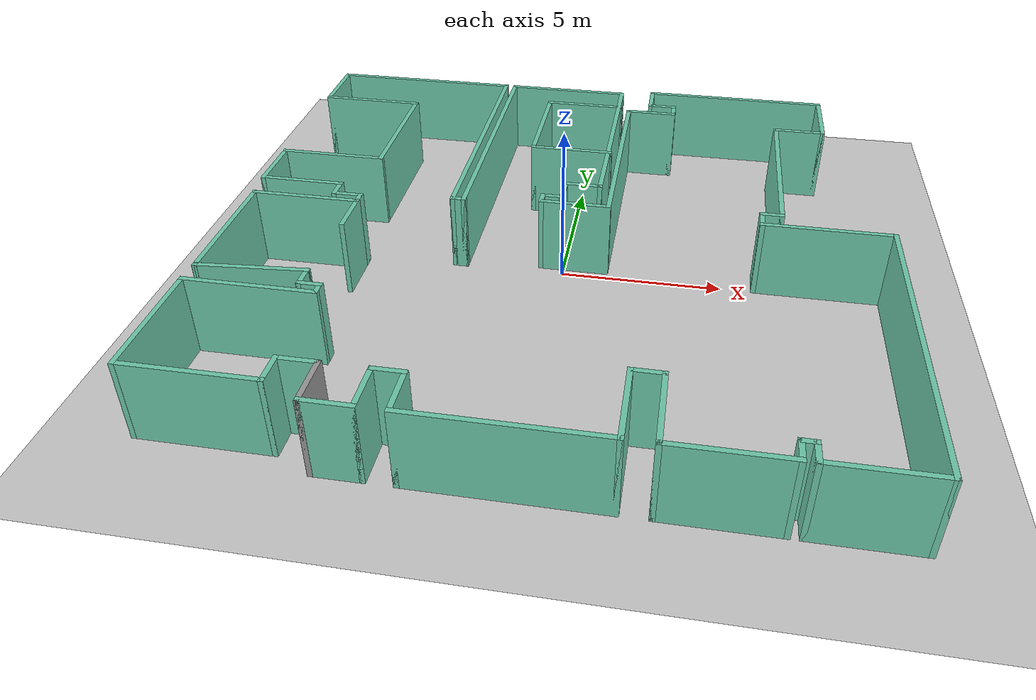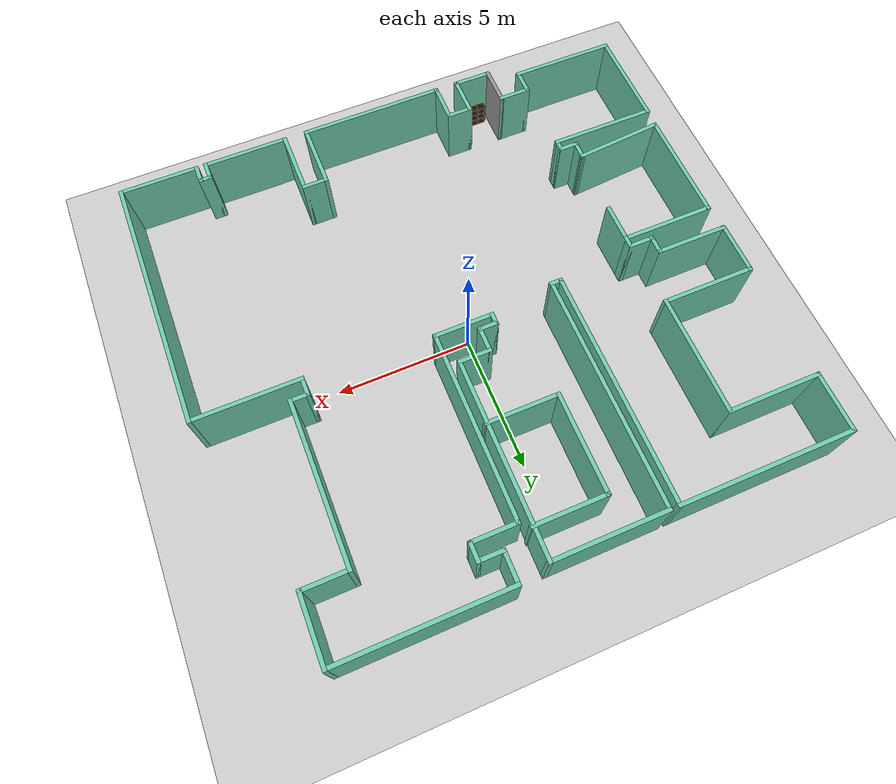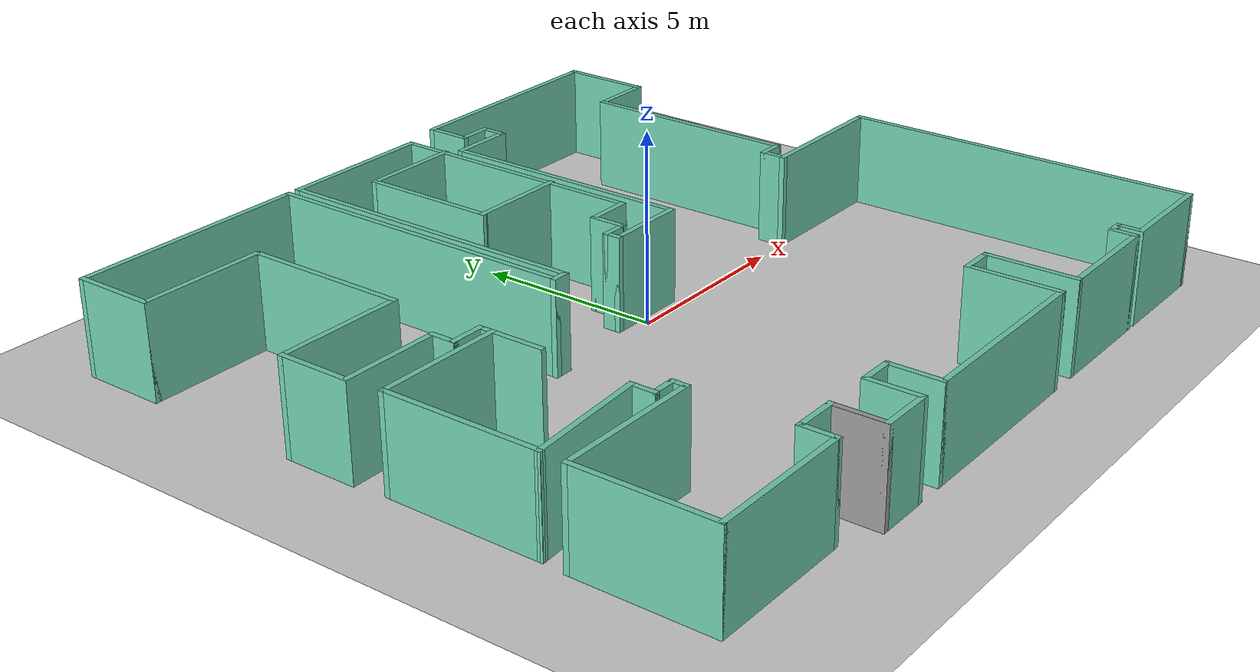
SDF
<sdf version="1.6">
 <world name="default">
  <model name="ground_plane">
   <static>1</static>
   <link name="link">
    <collision name="collision">
     <geometry><plane><normal>0 0 1</normal><size>100 100</size></plane></geometry>
     <surface>
      <contact><collide_bitmask>65535</collide_bitmask></contact>
      <friction><ode><mu>100</mu><mu2>50</mu2></ode></friction>
     </surface>
    </collision>
    <visual name="visual">
     <cast_shadows>0</cast_shadows>
     <geometry><plane><normal>0 0 1</normal><size>100 100</size></plane></geometry>
     <material>
      <script><uri>file://media/materials/scripts/gazebo.material</uri><name>Gazebo/Grey</name></script>
     </material>
    </visual>
   </link>
  </model>
  <model name="map_116">
   <pose>0.003051 -0.346569 0 0 -0 0</pose>
   <link name="Wall_102">
    <collision name="Wall_102_Collision">
     <geometry><box><size>3.5 0.15 2.5</size></box></geometry>
     <pose>0 0 1.25 0 -0 0</pose>
    </collision>
    <visual name="Wall_102_Visual">
     <pose>0 0 1.25 0 -0 0</pose>
     <geometry><box><size>3.5 0.15 2.5</size></box></geometry>
     <material>
      <script><uri>file://media/materials/scripts/gazebo.material</uri><name>Gazebo/Grey</name></script>
      <ambient>0.435294 0.796078 0.67451 1</ambient>
     </material>
     <meta><layer>0</layer></meta>
    </visual>
    <pose>-8.075 -0.3 0 0 -0 3.14159</pose>
   </link>
   <link name="Wall_104">
    <collision name="Wall_104_Collision">
     <geometry><box><size>4.25 0.15 2.5</size></box></geometry>
     <pose>0 0 1.25 0 -0 0</pose>
    </collision>
    <visual name="Wall_104_Visual">
     <pose>0 0 1.25 0 -0 0</pose>
     <geometry><box><size>4.25 0.15 2.5</size></box></geometry>
     <material>
      <script><uri>file://media/materials/scripts/gazebo.material</uri><name>Gazebo/Grey</name></script>
      <ambient>0.435294 0.796078 0.67451 1</ambient>
     </material>
     <meta><layer>0</layer></meta>
    </visual>
    <pose>-9.75 -2.35 0 0 -0 -1.5708</pose>
   </link>
   <link name="Wall_105">
    <collision name="Wall_105_Collision">
     <geometry><box><size>3.35975 0.15 2.5</size></box></geometry>
     <pose>0 0 1.25 0 -0 0</pose>
    </collision>
    <visual name="Wall_105_Visual">
     <pose>0 0 1.25 0 -0 0</pose>
     <geometry><box><size>3.35975 0.15 2.5</size></box></geometry>
     <material>
      <script><uri>file://media/materials/scripts/gazebo.material</uri><name>Gazebo/Grey</name></script>
      <ambient>0.435294 0.796078 0.67451 1</ambient>
     </material>
     <meta><layer>0</layer></meta>
    </visual>
    <pose>-8.15 -4.275 0 0 -0 0.077967</pose>
   </link>
   <link name="Wall_107">
    <collision name="Wall_107_Collision">
     <geometry><box><size>1.5 0.15 2.5</size></box></geometry>
     <pose>0 0 1.25 0 -0 0</pose>
    </collision>
    <visual name="Wall_107_Visual">
     <pose>0 0 1.25 0 -0 0</pose>
     <geometry><box><size>1.5 0.15 2.5</size></box></geometry>
     <material>
      <script><uri>file://media/materials/scripts/gazebo.material</uri><name>Gazebo/Grey</name></script>
      <ambient>0.435294 0.796078 0.67451 1</ambient>
     </material>
     <meta><layer>0</layer></meta>
    </visual>
    <pose>-6.4 -0.975 0 0 -0 -1.5708</pose>
   </link>
   <link name="Wall_109">
    <collision name="Wall_109_Collision">
     <geometry><box><size>2.75 0.15 2.5</size></box></geometry>
     <pose>0 0 1.25 0 -0 0</pose>
    </collision>
    <visual name="Wall_109_Visual">
     <pose>0 0 1.25 0 -0 0</pose>
     <geometry><box><size>2.75 0.15 2.5</size></box></geometry>
     <material>
      <script><uri>file://media/materials/scripts/gazebo.material</uri><name>Gazebo/Grey</name></script>
      <ambient>0.435294 0.796078 0.67451 1</ambient>
     </material>
     <meta><layer>0</layer></meta>
    </visual>
    <pose>-0.30531 7.77428 0 0 -0 3.14159</pose>
   </link>
   <link name="Wall_110">
    <collision name="Wall_110_Collision">
     <geometry><box><size>3.75 0.15 2.5</size></box></geometry>
     <pose>0 0 1.25 0 -0 0</pose>
    </collision>
    <visual name="Wall_110_Visual">
     <pose>0 0 1.25 0 -0 0</pose>
     <geometry><box><size>3.75 0.15 2.5</size></box></geometry>
     <material>
      <script><uri>file://media/materials/scripts/gazebo.material</uri><name>Gazebo/Grey</name></script>
      <ambient>0.435294 0.796078 0.67451 1</ambient>
     </material>
     <meta><layer>0</layer></meta>
    </visual>
    <pose>-1.60531 5.97428 0 0 -0 -1.5708</pose>
   </link>
   <link name="Wall_113">
    <collision name="Wall_113_Collision">
     <geometry><box><size>2.75 0.15 2.5</size></box></geometry>
     <pose>0 0 1.25 0 -0 0</pose>
    </collision>
    <visual name="Wall_113_Visual">
     <pose>0 0 1.25 0 -0 0</pose>
     <geometry><box><size>2.75 0.15 2.5</size></box></geometry>
     <material>
      <script><uri>file://media/materials/scripts/gazebo.material</uri><name>Gazebo/Grey</name></script>
      <ambient>0.435294 0.796078 0.67451 1</ambient>
     </material>
     <meta><layer>0</layer></meta>
    </visual>
    <pose>-0.30531 4.17428 0 0 -0 0</pose>
   </link>
   <link name="Wall_25">
    <collision name="Wall_25_Collision">
     <geometry><box><size>0.75 0.15 2.5</size></box></geometry>
     <pose>0 0 1.25 0 -0 0</pose>
    </collision>
    <visual name="Wall_25_Visual">
     <pose>0 0 1.25 0 -0 0</pose>
     <geometry><box><size>0.75 0.15 2.5</size></box></geometry>
     <material>
      <script><uri>file://media/materials/scripts/gazebo.material</uri><name>Gazebo/Grey</name></script>
      <ambient>0.435294 0.796078 0.67451 1</ambient>
     </material>
     <meta><layer>0</layer></meta>
    </visual>
    <pose>-6.55 -4.45 0 0 -0 -1.5708</pose>
   </link>
   <link name="Wall_26">
    <collision name="Wall_26_Collision">
     <geometry><box><size>0.75 0.15 2.5</size></box></geometry>
     <pose>0 0 1.25 0 -0 0</pose>
    </collision>
    <visual name="Wall_26_Visual">
     <pose>0 0 1.25 0 -0 0</pose>
     <geometry><box><size>0.75 0.15 2.5</size></box></geometry>
     <material>
      <script><uri>file://media/materials/scripts/gazebo.material</uri><name>Gazebo/Grey</name></script>
      <ambient>0.435294 0.796078 0.67451 1</ambient>
     </material>
     <meta><layer>0</layer></meta>
    </visual>
    <pose>-6.25 -4.75 0 0 -0 0</pose>
   </link>
   <link name="Wall_27">
    <collision name="Wall_27_Collision">
     <geometry><box><size>0.5 0.15 2.5</size></box></geometry>
     <pose>0 0 1.25 0 -0 0</pose>
    </collision>
    <visual name="Wall_27_Visual">
     <pose>0 0 1.25 0 -0 0</pose>
     <geometry><box><size>0.5 0.15 2.5</size></box></geometry>
     <material>
      <script><uri>file://media/materials/scripts/gazebo.material</uri><name>Gazebo/Grey</name></script>
      <ambient>0.435294 0.796078 0.67451 1</ambient>
     </material>
     <meta><layer>0</layer></meta>
    </visual>
    <pose>-5.95 -4.925 0 0 -0 -1.5708</pose>
   </link>
   <link name="Wall_28">
    <collision name="Wall_28_Collision">
     <geometry><box><size>4 0.15 2.5</size></box></geometry>
     <pose>0 0 1.25 0 -0 0</pose>
    </collision>
    <visual name="Wall_28_Visual">
     <pose>0 0 1.25 0 -0 0</pose>
     <geometry><box><size>4 0.15 2.5</size></box></geometry>
     <material>
      <script><uri>file://media/materials/scripts/gazebo.material</uri><name>Gazebo/Grey</name></script>
      <ambient>0.435294 0.796078 0.67451 1</ambient>
     </material>
     <meta><layer>0</layer></meta>
    </visual>
    <pose>-7.875 -5.1 0 0 -0 3.14159</pose>
   </link>
   <link name="Wall_29">
    <collision name="Wall_29_Collision">
     <geometry><box><size>3.75 0.15 2.5</size></box></geometry>
     <pose>0 0 1.25 0 -0 0</pose>
    </collision>
    <visual name="Wall_29_Visual">
     <pose>0 0 1.25 0 -0 0</pose>
     <geometry><box><size>3.75 0.15 2.5</size></box></geometry>
     <material>
      <script><uri>file://media/materials/scripts/gazebo.material</uri><name>Gazebo/Grey</name></script>
      <ambient>0.435294 0.796078 0.67451 1</ambient>
     </material>
     <meta><layer>0</layer></meta>
    </visual>
    <pose>-9.8 -6.9 0 0 -0 -1.5708</pose>
   </link>
   <link name="Wall_30">
    <collision name="Wall_30_Collision">
     <geometry><box><size>4 0.15 2.5</size></box></geometry>
     <pose>0 0 1.25 0 -0 0</pose>
    </collision>
    <visual name="Wall_30_Visual">
     <pose>0 0 1.25 0 -0 0</pose>
     <geometry><box><size>4 0.15 2.5</size></box></geometry>
     <material>
      <script><uri>file://media/materials/scripts/gazebo.material</uri><name>Gazebo/Grey</name></script>
      <ambient>0.435294 0.796078 0.67451 1</ambient>
     </material>
     <meta><layer>0</layer></meta>
    </visual>
    <pose>-7.875 -8.7 0 0 -0 0</pose>
   </link>
   <link name="Wall_31">
    <collision name="Wall_31_Collision">
     <geometry><box><size>1 0.15 2.5</size></box></geometry>
     <pose>0 0 1.25 0 -0 0</pose>
    </collision>
    <visual name="Wall_31_Visual">
     <pose>0 0 1.25 0 -0 0</pose>
     <geometry><box><size>1 0.15 2.5</size></box></geometry>
     <material>
      <script><uri>file://media/materials/scripts/gazebo.material</uri><name>Gazebo/Grey</name></script>
      <ambient>0.435294 0.796078 0.67451 1</ambient>
     </material>
     <meta><layer>0</layer></meta>
    </visual>
    <pose>-5.95 -8.275 0 0 -0 1.5708</pose>
   </link>
   <link name="Wall_32">
    <collision name="Wall_32_Collision">
     <geometry><box><size>1.25 0.15 2.5</size></box></geometry>
     <pose>0 0 1.25 0 -0 0</pose>
    </collision>
    <visual name="Wall_32_Visual">
     <pose>0 0 1.25 0 -0 0</pose>
     <geometry><box><size>1.25 0.15 2.5</size></box></geometry>
     <material>
      <script><uri>file://media/materials/scripts/gazebo.material</uri><name>Gazebo/Grey</name></script>
      <ambient>0.435294 0.796078 0.67451 1</ambient>
     </material>
     <meta><layer>0</layer></meta>
    </visual>
    <pose>-5.4 -7.85 0 0 -0 0</pose>
   </link>
   <link name="Wall_33">
    <collision name="Wall_33_Collision">
     <geometry><box><size>1.5 0.15 2.5</size></box></geometry>
     <pose>0 0 1.25 0 -0 0</pose>
    </collision>
    <visual name="Wall_33_Visual">
     <pose>0 0 1.25 0 -0 0</pose>
     <geometry><box><size>1.5 0.15 2.5</size></box></geometry>
     <material>
      <script><uri>file://media/materials/scripts/gazebo.material</uri><name>Gazebo/Grey</name></script>
      <ambient>1 1 1 1</ambient>
     </material>
     <meta><layer>0</layer></meta>
    </visual>
    <pose>-4.85 -8.525 0 0 -0 -1.5708</pose>
   </link>
   <link name="Wall_34">
    <collision name="Wall_34_Collision">
     <geometry><box><size>1.5 0.15 2.5</size></box></geometry>
     <pose>0 0 1.25 0 -0 0</pose>
    </collision>
    <visual name="Wall_34_Visual">
     <pose>0 0 1.25 0 -0 0</pose>
     <geometry><box><size>1.5 0.15 2.5</size></box></geometry>
     <material>
      <script><uri>file://media/materials/scripts/gazebo.material</uri><name>Gazebo/Grey</name></script>
      <ambient>0.435294 0.796078 0.67451 1</ambient>
     </material>
     <meta><layer>0</layer></meta>
    </visual>
    <pose>-4.175 -9.2 0 0 -0 0</pose>
   </link>
   <link name="Wall_35">
    <collision name="Wall_35_Collision">
     <geometry><box><size>1.5 0.15 2.5</size></box></geometry>
     <pose>0 0 1.25 0 -0 0</pose>
    </collision>
    <visual name="Wall_35_Visual">
     <pose>0 0 1.25 0 -0 0</pose>
     <geometry><box><size>1.5 0.15 2.5</size></box></geometry>
     <material>
      <script><uri>file://media/materials/scripts/gazebo.material</uri><name>Gazebo/Grey</name></script>
      <ambient>0.435294 0.796078 0.67451 1</ambient>
     </material>
     <meta><layer>0</layer></meta>
    </visual>
    <pose>-3.5 -8.525 0 0 -0 1.5708</pose>
   </link>
   <link name="Wall_36">
    <collision name="Wall_36_Collision">
     <geometry><box><size>1 0.15 2.5</size></box></geometry>
     <pose>0 0 1.25 0 -0 0</pose>
    </collision>
    <visual name="Wall_36_Visual">
     <pose>0 0 1.25 0 -0 0</pose>
     <geometry><box><size>1 0.15 2.5</size></box></geometry>
     <material>
      <script><uri>file://media/materials/scripts/gazebo.material</uri><name>Gazebo/Grey</name></script>
      <ambient>0.435294 0.796078 0.67451 1</ambient>
     </material>
     <meta><layer>0</layer></meta>
    </visual>
    <pose>-3.075 -7.85 0 0 -0 0</pose>
   </link>
   <link name="Wall_37">
    <collision name="Wall_37_Collision">
     <geometry><box><size>1.5 0.15 2.5</size></box></geometry>
     <pose>0 0 1.25 0 -0 0</pose>
    </collision>
    <visual name="Wall_37_Visual">
     <pose>0 0 1.25 0 -0 0</pose>
     <geometry><box><size>1.5 0.15 2.5</size></box></geometry>
     <material>
      <script><uri>file://media/materials/scripts/gazebo.material</uri><name>Gazebo/Grey</name></script>
      <ambient>0.435294 0.796078 0.67451 1</ambient>
     </material>
     <meta><layer>0</layer></meta>
    </visual>
    <pose>-2.65 -8.525 0 0 -0 -1.5708</pose>
   </link>
   <link name="Wall_38">
    <collision name="Wall_38_Collision">
     <geometry><box><size>5.5 0.15 2.5</size></box></geometry>
     <pose>0 0 1.25 0 -0 0</pose>
    </collision>
    <visual name="Wall_38_Visual">
     <pose>0 0 1.25 0 -0 0</pose>
     <geometry><box><size>5.5 0.15 2.5</size></box></geometry>
     <material>
      <script><uri>file://media/materials/scripts/gazebo.material</uri><name>Gazebo/Grey</name></script>
      <ambient>0.435294 0.796078 0.67451 1</ambient>
     </material>
     <meta><layer>0</layer></meta>
    </visual>
    <pose>0.025 -9.2 0 0 -0 0</pose>
   </link>
   <link name="Wall_39">
    <collision name="Wall_39_Collision">
     <geometry><box><size>2.5 0.15 2.5</size></box></geometry>
     <pose>0 0 1.25 0 -0 0</pose>
    </collision>
    <visual name="Wall_39_Visual">
     <pose>0 0 1.25 0 -0 0</pose>
     <geometry><box><size>2.5 0.15 2.5</size></box></geometry>
     <material>
      <script><uri>file://media/materials/scripts/gazebo.material</uri><name>Gazebo/Grey</name></script>
      <ambient>0.435294 0.796078 0.67451 1</ambient>
     </material>
     <meta><layer>0</layer></meta>
    </visual>
    <pose>2.7 -8.025 0 0 -0 1.5708</pose>
   </link>
   <link name="Wall_40">
    <collision name="Wall_40_Collision">
     <geometry><box><size>1 0.15 2.5</size></box></geometry>
     <pose>0 0 1.25 0 -0 0</pose>
    </collision>
    <visual name="Wall_40_Visual">
     <pose>0 0 1.25 0 -0 0</pose>
     <geometry><box><size>1 0.15 2.5</size></box></geometry>
     <material>
      <script><uri>file://media/materials/scripts/gazebo.material</uri><name>Gazebo/Grey</name></script>
      <ambient>0.435294 0.796078 0.67451 1</ambient>
     </material>
     <meta><layer>0</layer></meta>
    </visual>
    <pose>3.125 -6.85 0 0 -0 0</pose>
   </link>
   <link name="Wall_41">
    <collision name="Wall_41_Collision">
     <geometry><box><size>2.5 0.15 2.5</size></box></geometry>
     <pose>0 0 1.25 0 -0 0</pose>
    </collision>
    <visual name="Wall_41_Visual">
     <pose>0 0 1.25 0 -0 0</pose>
     <geometry><box><size>2.5 0.15 2.5</size></box></geometry>
     <material>
      <script><uri>file://media/materials/scripts/gazebo.material</uri><name>Gazebo/Grey</name></script>
      <ambient>0.435294 0.796078 0.67451 1</ambient>
     </material>
     <meta><layer>0</layer></meta>
    </visual>
    <pose>3.55 -8.025 0 0 -0 -1.5708</pose>
   </link>
   <link name="Wall_42">
    <collision name="Wall_42_Collision">
     <geometry><box><size>3.25 0.15 2.5</size></box></geometry>
     <pose>0 0 1.25 0 -0 0</pose>
    </collision>
    <visual name="Wall_42_Visual">
     <pose>0 0 1.25 0 -0 0</pose>
     <geometry><box><size>3.25 0.15 2.5</size></box></geometry>
     <material>
      <script><uri>file://media/materials/scripts/gazebo.material</uri><name>Gazebo/Grey</name></script>
      <ambient>0.435294 0.796078 0.67451 1</ambient>
     </material>
     <meta><layer>0</layer></meta>
    </visual>
    <pose>5.1 -9.2 0 0 -0 0</pose>
   </link>
   <link name="Wall_43">
    <collision name="Wall_43_Collision">
     <geometry><box><size>0.75 0.15 2.5</size></box></geometry>
     <pose>0 0 1.25 0 -0 0</pose>
    </collision>
    <visual name="Wall_43_Visual">
     <pose>0 0 1.25 0 -0 0</pose>
     <geometry><box><size>0.75 0.15 2.5</size></box></geometry>
     <material>
      <script><uri>file://media/materials/scripts/gazebo.material</uri><name>Gazebo/Grey</name></script>
      <ambient>0.435294 0.796078 0.67451 1</ambient>
     </material>
     <meta><layer>0</layer></meta>
    </visual>
    <pose>6.65 -8.9 0 0 -0 1.5708</pose>
   </link>
   <link name="Wall_44">
    <collision name="Wall_44_Collision">
     <geometry><box><size>0.5 0.15 2.5</size></box></geometry>
     <pose>0 0 1.25 0 -0 0</pose>
    </collision>
    <visual name="Wall_44_Visual">
     <pose>0 0 1.25 0 -0 0</pose>
     <geometry><box><size>0.5 0.15 2.5</size></box></geometry>
     <material>
      <script><uri>file://media/materials/scripts/gazebo.material</uri><name>Gazebo/Grey</name></script>
      <ambient>0.435294 0.796078 0.67451 1</ambient>
     </material>
     <meta><layer>0</layer></meta>
    </visual>
    <pose>6.825 -8.6 0 0 -0 0</pose>
   </link>
   <link name="Wall_45">
    <collision name="Wall_45_Collision">
     <geometry><box><size>0.75 0.15 2.5</size></box></geometry>
     <pose>0 0 1.25 0 -0 0</pose>
    </collision>
    <visual name="Wall_45_Visual">
     <pose>0 0 1.25 0 -0 0</pose>
     <geometry><box><size>0.75 0.15 2.5</size></box></geometry>
     <material>
      <script><uri>file://media/materials/scripts/gazebo.material</uri><name>Gazebo/Grey</name></script>
      <ambient>0.435294 0.796078 0.67451 1</ambient>
     </material>
     <meta><layer>0</layer></meta>
    </visual>
    <pose>7 -8.9 0 0 -0 -1.5708</pose>
   </link>
   <link name="Wall_46">
    <collision name="Wall_46_Collision">
     <geometry><box><size>3 0.15 2.5</size></box></geometry>
     <pose>0 0 1.25 0 -0 0</pose>
    </collision>
    <visual name="Wall_46_Visual">
     <pose>0 0 1.25 0 -0 0</pose>
     <geometry><box><size>3 0.15 2.5</size></box></geometry>
     <material>
      <script><uri>file://media/materials/scripts/gazebo.material</uri><name>Gazebo/Grey</name></script>
      <ambient>0.435294 0.796078 0.67451 1</ambient>
     </material>
     <meta><layer>0</layer></meta>
    </visual>
    <pose>8.425 -9.2 0 0 -0 0</pose>
   </link>
   <link name="Wall_47">
    <collision name="Wall_47_Collision">
     <geometry><box><size>9.75 0.15 2.5</size></box></geometry>
     <pose>0 0 1.25 0 -0 0</pose>
    </collision>
    <visual name="Wall_47_Visual">
     <pose>0 0 1.25 0 -0 0</pose>
     <geometry><box><size>9.75 0.15 2.5</size></box></geometry>
     <material>
      <script><uri>file://media/materials/scripts/gazebo.material</uri><name>Gazebo/Grey</name></script>
      <ambient>0.435294 0.796078 0.67451 1</ambient>
     </material>
     <meta><layer>0</layer></meta>
    </visual>
    <pose>9.85 -4.4 0 0 -0 1.5708</pose>
   </link>
   <link name="Wall_48">
    <collision name="Wall_48_Collision">
     <geometry><box><size>4 0.15 2.5</size></box></geometry>
     <pose>0 0 1.25 0 -0 0</pose>
    </collision>
    <visual name="Wall_48_Visual">
     <pose>0 0 1.25 0 -0 0</pose>
     <geometry><box><size>4 0.15 2.5</size></box></geometry>
     <material>
      <script><uri>file://media/materials/scripts/gazebo.material</uri><name>Gazebo/Grey</name></script>
      <ambient>0.435294 0.796078 0.67451 1</ambient>
     </material>
     <meta><layer>0</layer></meta>
    </visual>
    <pose>7.925 0.4 0 0 -0 3.14159</pose>
   </link>
   <link name="Wall_49">
    <collision name="Wall_49_Collision">
     <geometry><box><size>0.75 0.15 2.5</size></box></geometry>
     <pose>0 0 1.25 0 -0 0</pose>
    </collision>
    <visual name="Wall_49_Visual">
     <pose>0 0 1.25 0 -0 0</pose>
     <geometry><box><size>0.75 0.15 2.5</size></box></geometry>
     <material>
      <script><uri>file://media/materials/scripts/gazebo.material</uri><name>Gazebo/Grey</name></script>
      <ambient>0.435294 0.796078 0.67451 1</ambient>
     </material>
     <meta><layer>0</layer></meta>
    </visual>
    <pose>6 0.7 0 0 -0 1.5708</pose>
   </link>
   <link name="Wall_50">
    <collision name="Wall_50_Collision">
     <geometry><box><size>0.75 0.15 2.5</size></box></geometry>
     <pose>0 0 1.25 0 -0 0</pose>
    </collision>
    <visual name="Wall_50_Visual">
     <pose>0 0 1.25 0 -0 0</pose>
     <geometry><box><size>0.75 0.15 2.5</size></box></geometry>
     <material>
      <script><uri>file://media/materials/scripts/gazebo.material</uri><name>Gazebo/Grey</name></script>
      <ambient>0.435294 0.796078 0.67451 1</ambient>
     </material>
     <meta><layer>0</layer></meta>
    </visual>
    <pose>6.3 1 0 0 -0 0</pose>
   </link>
   <link name="Wall_51">
    <collision name="Wall_51_Collision">
     <geometry><box><size>6 0.15 2.5</size></box></geometry>
     <pose>0 0 1.25 0 -0 0</pose>
    </collision>
    <visual name="Wall_51_Visual">
     <pose>0 0 1.25 0 -0 0</pose>
     <geometry><box><size>6 0.15 2.5</size></box></geometry>
     <material>
      <script><uri>file://media/materials/scripts/gazebo.material</uri><name>Gazebo/Grey</name></script>
      <ambient>0.435294 0.796078 0.67451 1</ambient>
     </material>
     <meta><layer>0</layer></meta>
    </visual>
    <pose>6.6 3.925 0 0 -0 1.5708</pose>
   </link>
   <link name="Wall_52">
    <collision name="Wall_52_Collision">
     <geometry><box><size>1.75 0.15 2.5</size></box></geometry>
     <pose>0 0 1.25 0 -0 0</pose>
    </collision>
    <visual name="Wall_52_Visual">
     <pose>0 0 1.25 0 -0 0</pose>
     <geometry><box><size>1.75 0.15 2.5</size></box></geometry>
     <material>
      <script><uri>file://media/materials/scripts/gazebo.material</uri><name>Gazebo/Grey</name></script>
      <ambient>0.435294 0.796078 0.67451 1</ambient>
     </material>
     <meta><layer>0</layer></meta>
    </visual>
    <pose>7.4 6.85 0 0 -0 0</pose>
   </link>
   <link name="Wall_53">
    <collision name="Wall_53_Collision">
     <geometry><box><size>2.5 0.15 2.5</size></box></geometry>
     <pose>0 0 1.25 0 -0 0</pose>
    </collision>
    <visual name="Wall_53_Visual">
     <pose>0 0 1.25 0 -0 0</pose>
     <geometry><box><size>2.5 0.15 2.5</size></box></geometry>
     <material>
      <script><uri>file://media/materials/scripts/gazebo.material</uri><name>Gazebo/Grey</name></script>
      <ambient>0.435294 0.796078 0.67451 1</ambient>
     </material>
     <meta><layer>0</layer></meta>
    </visual>
    <pose>8.2 8.025 0 0 -0 1.5708</pose>
   </link>
   <link name="Wall_54">
    <collision name="Wall_54_Collision">
     <geometry><box><size>6.25 0.15 2.5</size></box></geometry>
     <pose>0 0 1.25 0 -0 0</pose>
    </collision>
    <visual name="Wall_54_Visual">
     <pose>0 0 1.25 0 -0 0</pose>
     <geometry><box><size>6.25 0.15 2.5</size></box></geometry>
     <material>
      <script><uri>file://media/materials/scripts/gazebo.material</uri><name>Gazebo/Grey</name></script>
      <ambient>0.435294 0.796078 0.67451 1</ambient>
     </material>
     <meta><layer>0</layer></meta>
    </visual>
    <pose>5.15 9.2 0 0 -0 3.14159</pose>
   </link>
   <link name="Wall_55">
    <collision name="Wall_55_Collision">
     <geometry><box><size>1.25 0.15 2.5</size></box></geometry>
     <pose>0 0 1.25 0 -0 0</pose>
    </collision>
    <visual name="Wall_55_Visual">
     <pose>0 0 1.25 0 -0 0</pose>
     <geometry><box><size>1.25 0.15 2.5</size></box></geometry>
     <material>
      <script><uri>file://media/materials/scripts/gazebo.material</uri><name>Gazebo/Grey</name></script>
      <ambient>0.435294 0.796078 0.67451 1</ambient>
     </material>
     <meta><layer>0</layer></meta>
    </visual>
    <pose>2.1 8.65 0 0 -0 -1.5708</pose>
   </link>
   <link name="Wall_56">
    <collision name="Wall_56_Collision">
     <geometry><box><size>1 0.15 2.5</size></box></geometry>
     <pose>0 0 1.25 0 -0 0</pose>
    </collision>
    <visual name="Wall_56_Visual">
     <pose>0 0 1.25 0 -0 0</pose>
     <geometry><box><size>1 0.15 2.5</size></box></geometry>
     <material>
      <script><uri>file://media/materials/scripts/gazebo.material</uri><name>Gazebo/Grey</name></script>
      <ambient>0.435294 0.796078 0.67451 1</ambient>
     </material>
     <meta><layer>0</layer></meta>
    </visual>
    <pose>2.525 8.1 0 0 -0 0</pose>
   </link>
   <link name="Wall_57">
    <collision name="Wall_57_Collision">
     <geometry><box><size>0.75 0.15 2.5</size></box></geometry>
     <pose>0 0 1.25 0 -0 0</pose>
    </collision>
    <visual name="Wall_57_Visual">
     <pose>0 0 1.25 0 -0 0</pose>
     <geometry><box><size>0.75 0.15 2.5</size></box></geometry>
     <material>
      <script><uri>file://media/materials/scripts/gazebo.material</uri><name>Gazebo/Grey</name></script>
      <ambient>0.435294 0.796078 0.67451 1</ambient>
     </material>
     <meta><layer>0</layer></meta>
    </visual>
    <pose>2.95 7.8 0 0 -0 -1.5708</pose>
   </link>
   <link name="Wall_58">
    <collision name="Wall_58_Collision">
     <geometry><box><size>1.75 0.15 2.5</size></box></geometry>
     <pose>0 0 1.25 0 -0 0</pose>
    </collision>
    <visual name="Wall_58_Visual">
     <pose>0 0 1.25 0 -0 0</pose>
     <geometry><box><size>1.75 0.15 2.5</size></box></geometry>
     <material>
      <script><uri>file://media/materials/scripts/gazebo.material</uri><name>Gazebo/Grey</name></script>
      <ambient>0.435294 0.796078 0.67451 1</ambient>
     </material>
     <meta><layer>0</layer></meta>
    </visual>
    <pose>2.15 7.5 0 0 -0 3.14159</pose>
   </link>
   <link name="Wall_63">
    <collision name="Wall_63_Collision">
     <geometry><box><size>1 0.15 2.5</size></box></geometry>
     <pose>0 0 1.25 0 -0 0</pose>
    </collision>
    <visual name="Wall_63_Visual">
     <pose>0 0 1.25 0 -0 0</pose>
     <geometry><box><size>1 0.15 2.5</size></box></geometry>
     <material>
      <script><uri>file://media/materials/scripts/gazebo.material</uri><name>Gazebo/Grey</name></script>
      <ambient>0.435294 0.796078 0.67451 1</ambient>
     </material>
     <meta><layer>0</layer></meta>
    </visual>
    <pose>-0.15 1.425 0 0 -0 1.5708</pose>
   </link>
   <link name="Wall_64">
    <collision name="Wall_64_Collision">
     <geometry><box><size>1.25 0.15 2.5</size></box></geometry>
     <pose>0 0 1.25 0 -0 0</pose>
    </collision>
    <visual name="Wall_64_Visual">
     <pose>0 0 1.25 0 -0 0</pose>
     <geometry><box><size>1.25 0.15 2.5</size></box></geometry>
     <material>
      <script><uri>file://media/materials/scripts/gazebo.material</uri><name>Gazebo/Grey</name></script>
      <ambient>0.435294 0.796078 0.67451 1</ambient>
     </material>
     <meta><layer>0</layer></meta>
    </visual>
    <pose>0.4 1.85 0 0 -0 0</pose>
   </link>
   <link name="Wall_65">
    <collision name="Wall_65_Collision">
     <geometry><box><size>7.25 0.15 2.5</size></box></geometry>
     <pose>0 0 1.25 0 -0 0</pose>
    </collision>
    <visual name="Wall_65_Visual">
     <pose>0 0 1.25 0 -0 0</pose>
     <geometry><box><size>7.25 0.15 2.5</size></box></geometry>
     <material>
      <script><uri>file://media/materials/scripts/gazebo.material</uri><name>Gazebo/Grey</name></script>
      <ambient>0.435294 0.796078 0.67451 1</ambient>
     </material>
     <meta><layer>0</layer></meta>
    </visual>
    <pose>0.95 5.4 0 0 -0 1.5708</pose>
   </link>
   <link name="Wall_70">
    <collision name="Wall_70_Collision">
     <geometry><box><size>4.25 0.15 2.5</size></box></geometry>
     <pose>0 0 1.25 0 -0 0</pose>
    </collision>
    <visual name="Wall_70_Visual">
     <pose>0 0 1.25 0 -0 0</pose>
     <geometry><box><size>4.25 0.15 2.5</size></box></geometry>
     <material>
      <script><uri>file://media/materials/scripts/gazebo.material</uri><name>Gazebo/Grey</name></script>
      <ambient>0.435294 0.796078 0.67451 1</ambient>
     </material>
     <meta><layer>0</layer></meta>
    </visual>
    <pose>-1.1 8.95 0 0 -0 3.14159</pose>
   </link>
   <link name="Wall_71">
    <collision name="Wall_71_Collision">
     <geometry><box><size>8.75 0.15 2.5</size></box></geometry>
     <pose>0 0 1.25 0 -0 0</pose>
    </collision>
    <visual name="Wall_71_Visual">
     <pose>0 0 1.25 0 -0 0</pose>
     <geometry><box><size>8.75 0.15 2.5</size></box></geometry>
     <material>
      <script><uri>file://media/materials/scripts/gazebo.material</uri><name>Gazebo/Grey</name></script>
      <ambient>0.435294 0.796078 0.67451 1</ambient>
     </material>
     <meta><layer>0</layer></meta>
    </visual>
    <pose>-3.15 4.65 0 0 -0 -1.5708</pose>
   </link>
   <link name="Wall_72">
    <collision name="Wall_72_Collision">
     <geometry><box><size>0.5 0.15 2.5</size></box></geometry>
     <pose>0 0 1.25 0 -0 0</pose>
    </collision>
    <visual name="Wall_72_Visual">
     <pose>0 0 1.25 0 -0 0</pose>
     <geometry><box><size>0.5 0.15 2.5</size></box></geometry>
     <material>
      <script><uri>file://media/materials/scripts/gazebo.material</uri><name>Gazebo/Grey</name></script>
      <ambient>0.435294 0.796078 0.67451 1</ambient>
     </material>
     <meta><layer>0</layer></meta>
    </visual>
    <pose>-3.325 0.35 0 0 -0 3.14159</pose>
   </link>
   <link name="Wall_73">
    <collision name="Wall_73_Collision">
     <geometry><box><size>8.75 0.15 2.5</size></box></geometry>
     <pose>0 0 1.25 0 -0 0</pose>
    </collision>
    <visual name="Wall_73_Visual">
     <pose>0 0 1.25 0 -0 0</pose>
     <geometry><box><size>8.75 0.15 2.5</size></box></geometry>
     <material>
      <script><uri>file://media/materials/scripts/gazebo.material</uri><name>Gazebo/Grey</name></script>
      <ambient>0.435294 0.796078 0.67451 1</ambient>
     </material>
     <meta><layer>0</layer></meta>
    </visual>
    <pose>-3.5 4.65 0 0 -0 1.5708</pose>
   </link>
   <link name="Wall_77">
    <collision name="Wall_77_Collision">
     <geometry><box><size>7 0.15 2.5</size></box></geometry>
     <pose>0 0 1.25 0 -0 0</pose>
    </collision>
    <visual name="Wall_77_Visual">
     <pose>0 0 1.25 0 -0 0</pose>
     <geometry><box><size>7 0.15 2.5</size></box></geometry>
     <material>
      <script><uri>file://media/materials/scripts/gazebo.material</uri><name>Gazebo/Grey</name></script>
      <ambient>0.435294 0.796078 0.67451 1</ambient>
     </material>
     <meta><layer>0</layer></meta>
    </visual>
    <pose>1.35 4.075 0 0 -0 -1.5708</pose>
   </link>
   <link name="Wall_78">
    <collision name="Wall_78_Collision">
     <geometry><box><size>2.25 0.15 2.5</size></box></geometry>
     <pose>0 0 1.25 0 -0 0</pose>
    </collision>
    <visual name="Wall_78_Visual">
     <pose>0 0 1.25 0 -0 0</pose>
     <geometry><box><size>2.25 0.15 2.5</size></box></geometry>
     <material>
      <script><uri>file://media/materials/scripts/gazebo.material</uri><name>Gazebo/Grey</name></script>
      <ambient>0.435294 0.796078 0.67451 1</ambient>
     </material>
     <meta><layer>0</layer></meta>
    </visual>
    <pose>0.3 0.65 0 0 -0 3.14159</pose>
   </link>
   <link name="Wall_79">
    <collision name="Wall_79_Collision">
     <geometry><box><size>0.5 0.15 2.5</size></box></geometry>
     <pose>0 0 1.25 0 -0 0</pose>
    </collision>
    <visual name="Wall_79_Visual">
     <pose>0 0 1.25 0 -0 0</pose>
     <geometry><box><size>0.5 0.15 2.5</size></box></geometry>
     <material>
      <script><uri>file://media/materials/scripts/gazebo.material</uri><name>Gazebo/Grey</name></script>
      <ambient>0.435294 0.796078 0.67451 1</ambient>
     </material>
     <meta><layer>0</layer></meta>
    </visual>
    <pose>-0.75 0.825 0 0 -0 1.5708</pose>
   </link>
   <link name="Wall_80">
    <collision name="Wall_80_Collision">
     <geometry><box><size>0.75 0.15 2.5</size></box></geometry>
     <pose>0 0 1.25 0 -0 0</pose>
    </collision>
    <visual name="Wall_80_Visual">
     <pose>0 0 1.25 0 -0 0</pose>
     <geometry><box><size>0.75 0.15 2.5</size></box></geometry>
     <material>
      <script><uri>file://media/materials/scripts/gazebo.material</uri><name>Gazebo/Grey</name></script>
      <ambient>0.435294 0.796078 0.67451 1</ambient>
     </material>
     <meta><layer>0</layer></meta>
    </visual>
    <pose>-0.45 1 0 0 -0 0</pose>
   </link>
   <link name="Wall_87">
    <collision name="Wall_87_Collision">
     <geometry><box><size>6.5 0.15 2.5</size></box></geometry>
     <pose>0 0 1.25 0 -0 0</pose>
    </collision>
    <visual name="Wall_87_Visual">
     <pose>0 0 1.25 0 -0 0</pose>
     <geometry><box><size>6.5 0.15 2.5</size></box></geometry>
     <material>
      <script><uri>file://media/materials/scripts/gazebo.material</uri><name>Gazebo/Grey</name></script>
      <ambient>0.435294 0.796078 0.67451 1</ambient>
     </material>
     <meta><layer>0</layer></meta>
    </visual>
    <pose>-6.675 8.95 0 0 -0 3.14159</pose>
   </link>
   <link name="Wall_88">
    <collision name="Wall_88_Collision">
     <geometry><box><size>2.25 0.15 2.5</size></box></geometry>
     <pose>0 0 1.25 0 -0 0</pose>
    </collision>
    <visual name="Wall_88_Visual">
     <pose>0 0 1.25 0 -0 0</pose>
     <geometry><box><size>2.25 0.15 2.5</size></box></geometry>
     <material>
      <script><uri>file://media/materials/scripts/gazebo.material</uri><name>Gazebo/Grey</name></script>
      <ambient>0.435294 0.796078 0.67451 1</ambient>
     </material>
     <meta><layer>0</layer></meta>
    </visual>
    <pose>-9.85 7.9 0 0 -0 -1.5708</pose>
   </link>
   <link name="Wall_89">
    <collision name="Wall_89_Collision">
     <geometry><box><size>3.5 0.15 2.5</size></box></geometry>
     <pose>0 0 1.25 0 -0 0</pose>
    </collision>
    <visual name="Wall_89_Visual">
     <pose>0 0 1.25 0 -0 0</pose>
     <geometry><box><size>3.5 0.15 2.5</size></box></geometry>
     <material>
      <script><uri>file://media/materials/scripts/gazebo.material</uri><name>Gazebo/Grey</name></script>
      <ambient>0.435294 0.796078 0.67451 1</ambient>
     </material>
     <meta><layer>0</layer></meta>
    </visual>
    <pose>-8.175 6.85 0 0 -0 0</pose>
   </link>
   <link name="Wall_90">
    <collision name="Wall_90_Collision">
     <geometry><box><size>4.5 0.15 2.5</size></box></geometry>
     <pose>0 0 1.25 0 -0 0</pose>
    </collision>
    <visual name="Wall_90_Visual">
     <pose>0 0 1.25 0 -0 0</pose>
     <geometry><box><size>4.5 0.15 2.5</size></box></geometry>
     <material>
      <script><uri>file://media/materials/scripts/gazebo.material</uri><name>Gazebo/Grey</name></script>
      <ambient>0.435294 0.796078 0.67451 1</ambient>
     </material>
     <meta><layer>0</layer></meta>
    </visual>
    <pose>-6.5 4.675 0 0 -0 -1.5708</pose>
   </link>
   <link name="Wall_91">
    <collision name="Wall_91_Collision">
     <geometry><box><size>3.5 0.15 2.5</size></box></geometry>
     <pose>0 0 1.25 0 -0 0</pose>
    </collision>
    <visual name="Wall_91_Visual">
     <pose>0 0 1.25 0 -0 0</pose>
     <geometry><box><size>3.5 0.15 2.5</size></box></geometry>
     <material>
      <script><uri>file://media/materials/scripts/gazebo.material</uri><name>Gazebo/Grey</name></script>
      <ambient>0.435294 0.796078 0.67451 1</ambient>
     </material>
     <meta><layer>0</layer></meta>
    </visual>
    <pose>-8.175 2.5 0 0 -0 3.14159</pose>
   </link>
   <link name="Wall_92">
    <collision name="Wall_92_Collision">
     <geometry><box><size>2 0.15 2.5</size></box></geometry>
     <pose>0 0 1.25 0 -0 0</pose>
    </collision>
    <visual name="Wall_92_Visual">
     <pose>0 0 1.25 0 -0 0</pose>
     <geometry><box><size>2 0.15 2.5</size></box></geometry>
     <material>
      <script><uri>file://media/materials/scripts/gazebo.material</uri><name>Gazebo/Grey</name></script>
      <ambient>0.435294 0.796078 0.67451 1</ambient>
     </material>
     <meta><layer>0</layer></meta>
    </visual>
    <pose>-9.85 1.575 0 0 -0 -1.5708</pose>
   </link>
   <link name="Wall_95">
    <collision name="Wall_95_Collision">
     <geometry><box><size>2.75 0.15 2.5</size></box></geometry>
     <pose>0 0 1.25 0 -0 0</pose>
    </collision>
    <visual name="Wall_95_Visual">
     <pose>0 0 1.25 0 -0 0</pose>
     <geometry><box><size>2.75 0.15 2.5</size></box></geometry>
     <material>
      <script><uri>file://media/materials/scripts/gazebo.material</uri><name>Gazebo/Grey</name></script>
      <ambient>0.435294 0.796078 0.67451 1</ambient>
     </material>
     <meta><layer>0</layer></meta>
    </visual>
    <pose>-8.55 0.65 0 0 -0 0</pose>
   </link>
   <link name="Wall_96">
    <collision name="Wall_96_Collision">
     <geometry><box><size>0.75 0.15 2.5</size></box></geometry>
     <pose>0 0 1.25 0 -0 0</pose>
    </collision>
    <visual name="Wall_96_Visual">
     <pose>0 0 1.25 0 -0 0</pose>
     <geometry><box><size>0.75 0.15 2.5</size></box></geometry>
     <material>
      <script><uri>file://media/materials/scripts/gazebo.material</uri><name>Gazebo/Grey</name></script>
      <ambient>0.435294 0.796078 0.67451 1</ambient>
     </material>
     <meta><layer>0</layer></meta>
    </visual>
    <pose>-7.25 0.35 0 0 -0 -1.5708</pose>
   </link>
   <link name="Wall_97">
    <collision name="Wall_97_Collision">
     <geometry><box><size>1 0.15 2.5</size></box></geometry>
     <pose>0 0 1.25 0 -0 0</pose>
    </collision>
    <visual name="Wall_97_Visual">
     <pose>0 0 1.25 0 -0 0</pose>
     <geometry><box><size>1 0.15 2.5</size></box></geometry>
     <material>
      <script><uri>file://media/materials/scripts/gazebo.material</uri><name>Gazebo/Grey</name></script>
      <ambient>0.435294 0.796078 0.67451 1</ambient>
     </material>
     <meta><layer>0</layer></meta>
    </visual>
    <pose>-6.825 0.05 0 0 -0 0</pose>
   </link>
   <link name="Wall_98">
    <collision name="Wall_98_Collision">
     <geometry><box><size>0.5 0.15 2.5</size></box></geometry>
     <pose>0 0 1.25 0 -0 0</pose>
    </collision>
    <visual name="Wall_98_Visual">
     <pose>0 0 1.25 0 -0 0</pose>
     <geometry><box><size>0.5 0.15 2.5</size></box></geometry>
     <material>
      <script><uri>file://media/materials/scripts/gazebo.material</uri><name>Gazebo/Grey</name></script>
      <ambient>0.435294 0.796078 0.67451 1</ambient>
     </material>
     <meta><layer>0</layer></meta>
    </visual>
    <pose>-6.4 -0.125 0 0 -0 -1.5708</pose>
   </link>
   <static>1</static>
  </model>
  <model name="6_Cube_StorageE">
   <link name="Wall_0">
    <pose>0 0 0.01 0 -0 0</pose>
    <inertial>
     <mass>1.6201</mass>
     <inertia><ixx>0.0119</ixx><iyy>0.0631</iyy><izz>0.0513</izz><ixy>0</ixy><ixz>0</ixz><iyz>0</iyz></inertia>
    </inertial>
    <collision name="Wall_0_Collision"><geometry><box><size>0.616 0.296 0.02</size></box></geometry></collision>
    <visual name="Wall_0_Visual">
     <geometry><box><size>0.616 0.296 0.02</size></box></geometry>
     <material>
      <script><uri>file://media/materials/scripts/gazebo.material</uri><name>Gazebo/Grey</name></script>
      <ambient>0.105882 0.0509804 0 1</ambient>
     </material>
    </visual>
   </link>
   <joint name="0_2" type="fixed">
    <pose>-0.308 0 0 0 -0 0</pose>
    <parent>Wall_2</parent>
    <child>Wall_0</child>
    <axis>
     <xyz>1 0 0</xyz>
     <use_parent_model_frame>0</use_parent_model_frame>
     <limit><lower>-1e+16</lower><upper>1e+16</upper></limit>
    </axis>
   </joint>
   <joint name="0_12" type="fixed">
    <parent>Wall_12</parent>
    <child>Wall_0</child>
    <axis>
     <xyz>0 0 1</xyz>
     <use_parent_model_frame>0</use_parent_model_frame>
     <limit><lower>-1e+16</lower><upper>1e+16</upper></limit>
    </axis>
   </joint>
   <joint name="0_4" type="fixed">
    <pose>0.308 0 0 0 -0 0</pose>
    <parent>Wall_4</parent>
    <child>Wall_0</child>
    <axis>
     <xyz>1 0 0</xyz>
     <use_parent_model_frame>0</use_parent_model_frame>
     <limit><lower>-1e+16</lower><upper>1e+16</upper></limit>
    </axis>
   </joint>
   <link name="Wall_10">
    <pose>0 0 0.61 0 -0 0</pose>
    <inertial>
     <mass>1.6201</mass>
     <inertia><ixx>0.0119</ixx><iyy>0.0631</iyy><izz>0.0513</izz><ixy>0</ixy><ixz>0</ixz><iyz>0</iyz></inertia>
    </inertial>
    <collision name="Wall_10_Collision"><geometry><box><size>0.616 0.296 0.02</size></box></geometry></collision>
    <visual name="Wall_10_Visual">
     <geometry><box><size>0.616 0.296 0.02</size></box></geometry>
     <material>
      <script><uri>file://media/materials/scripts/gazebo.material</uri><name>Gazebo/Grey</name></script>
      <ambient>0.105882 0.0509804 0 1</ambient>
     </material>
    </visual>
   </link>
   <joint name="10_2" type="fixed">
    <pose>-0.308 0 0 0 -0 0</pose>
    <parent>Wall_2</parent>
    <child>Wall_10</child>
    <axis>
     <xyz>1 0 0</xyz>
     <use_parent_model_frame>0</use_parent_model_frame>
     <limit><lower>-1e+16</lower><upper>1e+16</upper></limit>
    </axis>
   </joint>
   <joint name="10_12" type="fixed">
    <parent>Wall_12</parent>
    <child>Wall_10</child>
    <axis>
     <xyz>0 0 1</xyz>
     <use_parent_model_frame>0</use_parent_model_frame>
     <limit><lower>-1e+16</lower><upper>1e+16</upper></limit>
    </axis>
   </joint>
   <joint name="10_4" type="fixed">
    <pose>0.308 0 0 0 -0 0</pose>
    <parent>Wall_4</parent>
    <child>Wall_10</child>
    <axis>
     <xyz>1 0 0</xyz>
     <use_parent_model_frame>0</use_parent_model_frame>
     <limit><lower>-1e+16</lower><upper>1e+16</upper></limit>
    </axis>
   </joint>
   <link name="Wall_12">
    <pose>0 0 0.4575 0 -0 0</pose>
    <inertial>
     <mass>2.4065</mass>
     <inertia><ixx>0.0177</ixx><iyy>0.1855</iyy><izz>0.168</izz><ixy>0</ixy><ixz>0</ixz><iyz>0</iyz></inertia>
    </inertial>
    <collision name="Wall_12_Collision"><geometry><box><size>0.02 0.296 0.915</size></box></geometry></collision>
    <visual name="Wall_12_Visual">
     <geometry><box><size>0.02 0.296 0.915</size></box></geometry>
     <material>
      <script><uri>file://media/materials/scripts/gazebo.material</uri><name>Gazebo/Grey</name></script>
      <ambient>0.105882 0.0509804 0 1</ambient>
     </material>
    </visual>
   </link>
   <link name="Wall_2">
    <pose>-0.298 0 0.4575 0 -0 0</pose>
    <inertial>
     <mass>2.4065</mass>
     <inertia><ixx>0.0177</ixx><iyy>0.1855</iyy><izz>0.168</izz><ixy>0</ixy><ixz>0</ixz><iyz>0</iyz></inertia>
    </inertial>
    <collision name="Wall_2_Collision"><geometry><box><size>0.02 0.296 0.915</size></box></geometry></collision>
    <visual name="Wall_2_Visual">
     <geometry><box><size>0.02 0.296 0.915</size></box></geometry>
     <material>
      <script><uri>file://media/materials/scripts/gazebo.material</uri><name>Gazebo/Grey</name></script>
      <ambient>0.105882 0.0509804 0 1</ambient>
     </material>
    </visual>
   </link>
   <link name="Wall_4">
    <pose>0.298 0 0.4575 0 -0 0</pose>
    <inertial>
     <mass>2.4065</mass>
     <inertia><ixx>0.0177</ixx><iyy>0.1855</iyy><izz>0.168</izz><ixy>0</ixy><ixz>0</ixz><iyz>0</iyz></inertia>
    </inertial>
    <collision name="Wall_4_Collision"><geometry><box><size>0.02 0.296 0.915</size></box></geometry></collision>
    <visual name="Wall_4_Visual">
     <geometry><box><size>0.02 0.296 0.915</size></box></geometry>
     <material>
      <script><uri>file://media/materials/scripts/gazebo.material</uri><name>Gazebo/Grey</name></script>
      <ambient>0.105882 0.0509804 0 1</ambient>
     </material>
    </visual>
   </link>
   <link name="Wall_6">
    <pose>0 0 0.905 0 -0 0</pose>
    <inertial>
     <mass>1.6201</mass>
     <inertia><ixx>0.0119</ixx><iyy>0.0631</iyy><izz>0.0513</izz><ixy>0</ixy><ixz>0</ixz><iyz>0</iyz></inertia>
    </inertial>
    <collision name="Wall_6_Collision"><geometry><box><size>0.616 0.296 0.02</size></box></geometry></collision>
    <visual name="Wall_6_Visual">
     <geometry><box><size>0.616 0.296 0.02</size></box></geometry>
     <material>
      <script><uri>file://media/materials/scripts/gazebo.material</uri><name>Gazebo/Grey</name></script>
      <ambient>0.105882 0.0509804 0 1</ambient>
     </material>
    </visual>
   </link>
   <joint name="6_2" type="fixed">
    <pose>-0.308 0 0 0 -0 0</pose>
    <parent>Wall_2</parent>
    <child>Wall_6</child>
    <axis>
     <xyz>2 0 0</xyz>
     <use_parent_model_frame>0</use_parent_model_frame>
     <limit><lower>-1e+16</lower><upper>1e+16</upper></limit>
    </axis>
   </joint>
   <joint name="6_12" type="fixed">
    <parent>Wall_12</parent>
    <child>Wall_6</child>
    <axis>
     <xyz>0 0 1</xyz>
     <use_parent_model_frame>0</use_parent_model_frame>
     <limit><lower>-1e+16</lower><upper>1e+16</upper></limit>
    </axis>
   </joint>
   <joint name="6_4" type="fixed">
    <pose>0.308 0 0 0 -0 0</pose>
    <parent>Wall_4</parent>
    <child>Wall_6</child>
    <axis>
     <xyz>1 0 0</xyz>
     <use_parent_model_frame>0</use_parent_model_frame>
     <limit><lower>-1e+16</lower><upper>1e+16</upper></limit>
    </axis>
   </joint>
   <link name="Wall_8">
    <pose>0 0 0.305 0 -0 0</pose>
    <inertial>
     <mass>1.6201</mass>
     <inertia><ixx>0.0119</ixx><iyy>0.0631</iyy><izz>0.0513</izz><ixy>0</ixy><ixz>0</ixz><iyz>0</iyz></inertia>
    </inertial>
    <collision name="Wall_8_Collision"><geometry><box><size>0.616 0.296 0.02</size></box></geometry></collision>
    <visual name="Wall_8_Visual">
     <geometry><box><size>0.616 0.296 0.02</size></box></geometry>
     <material>
      <script><uri>file://media/materials/scripts/gazebo.material</uri><name>Gazebo/Grey</name></script>
      <ambient>0.105882 0.0509804 0 1</ambient>
     </material>
    </visual>
   </link>
   <joint name="8_2" type="fixed">
    <pose>-0.308 0 0 0 -0 0</pose>
    <parent>Wall_2</parent>
    <child>Wall_8</child>
    <axis>
     <xyz>1 0 0</xyz>
     <use_parent_model_frame>0</use_parent_model_frame>
     <limit><lower>-1e+16</lower><upper>1e+16</upper></limit>
    </axis>
   </joint>
   <joint name="8_12" type="fixed">
    <parent>Wall_12</parent>
    <child>Wall_8</child>
    <axis>
     <xyz>0 0 1</xyz>
     <use_parent_model_frame>0</use_parent_model_frame>
     <limit><lower>-1e+16</lower><upper>1e+16</upper></limit>
    </axis>
   </joint>
   <joint name="8_4" type="fixed">
    <pose>0.308 0 0 0 -0 0</pose>
    <parent>Wall_4</parent>
    <child>Wall_8</child>
    <axis>
     <xyz>1 0 0</xyz>
     <use_parent_model_frame>0</use_parent_model_frame>
     <limit><lower>-1e+16</lower><upper>1e+16</upper></limit>
    </axis>
   </joint>
   <static>1</static>
   <pose>-4.32994 -9.35811 0 0 -0 0</pose>
  </model>
 </world>
</sdf>
